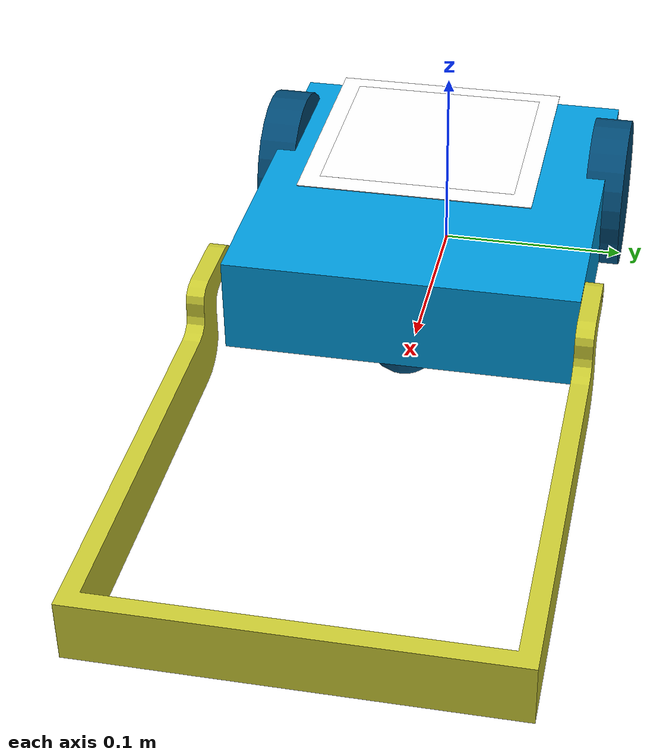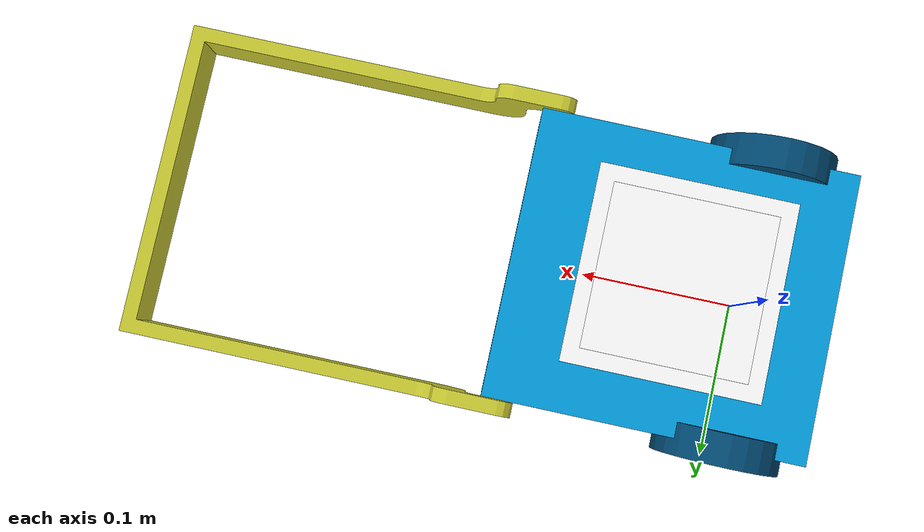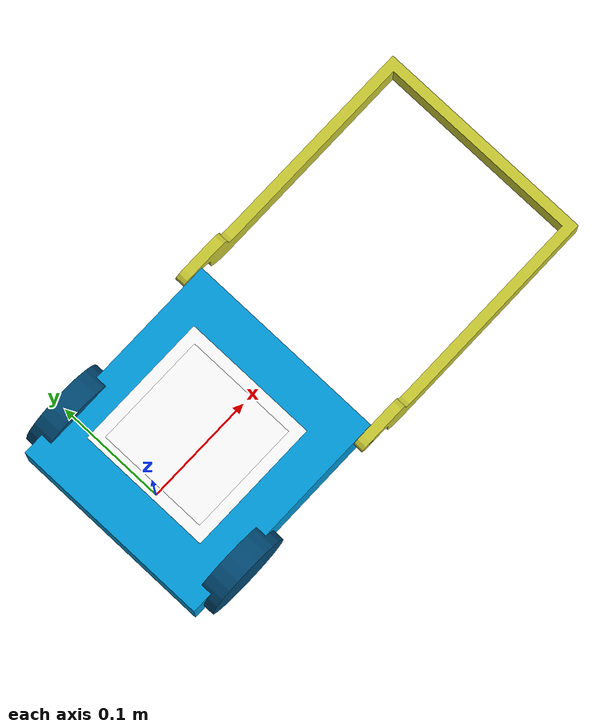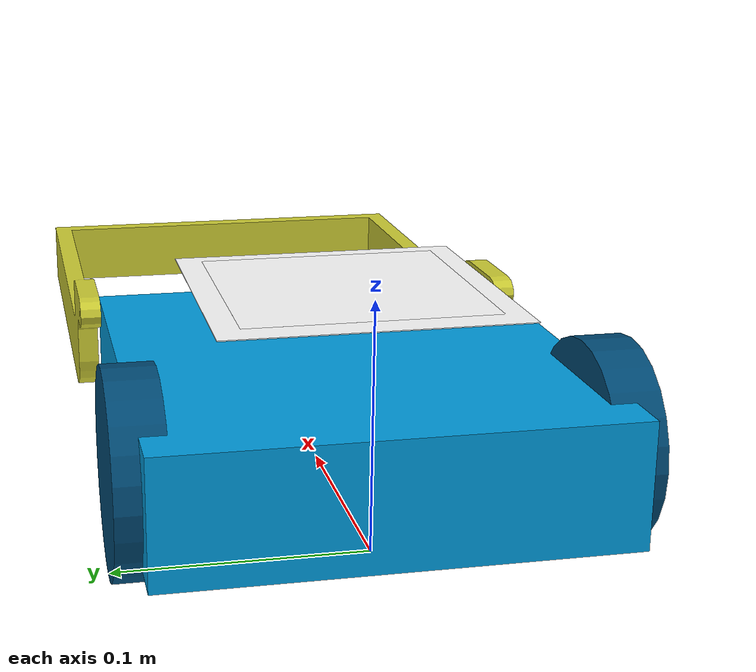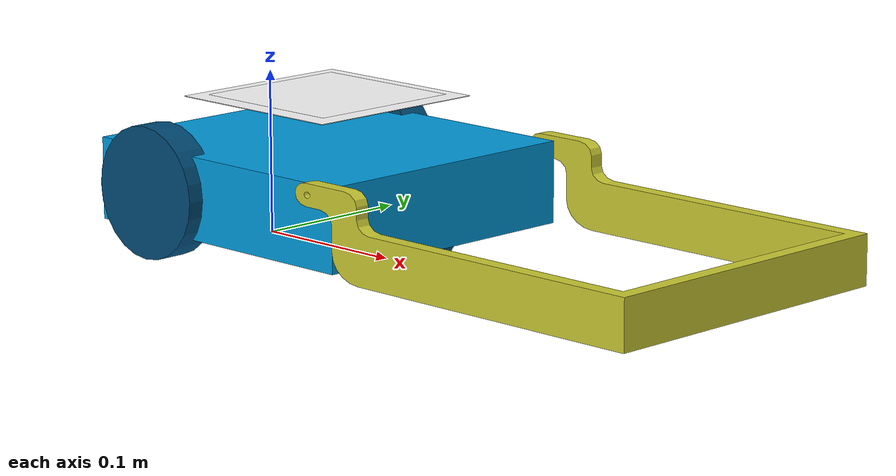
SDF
<?xml version="1.0" ?>
<sdf version="1.9">
  <model name="robot_v1" canonical_link='chassis'>
    <pose>0 0 0 0 0 0</pose>
    <link name='chassis'>
      <pose relative_to='__model__'>0.05 0 0.04 0 0 0</pose>
      <inertial>
        <mass>1</mass>
        <inertia>
          <ixx>0.001191615</ixx>
          <ixy>0</ixy>
          <ixz>0</ixz>
          <iyy>0.004051490</iyy>
          <iyz>0</iyz>
          <izz>0.004766458</izz>
        </inertia>
      </inertial>
      <visual name='visual'>
        <geometry>
          <box>
            <size>0.2 0.181 0.05</size>
          </box>
        </geometry>
        <material>
          <ambient>0.0 0.612 0.867 1</ambient>
          <diffuse>0.0 0.612 0.867 1</diffuse>
          <specular>0.0 0.612 0.867 1</specular>
        </material>
      </visual>
      <collision name='collision'>
        <geometry>
          <box>
            <size>0.2 0.181 0.05</size>
          </box>
        </geometry>
      </collision>

      <sensor name="camera_sensor" type="camera">
        <pose>0.1 0 0.06 0 0 0</pose>
        <camera>
          <image>
            <width>1920</width>
            <height>1080</height>
            <format>R8G8B8</format>
          </image>
          <clip>
            <near>0.1</near>
            <far>100</far>
          </clip>
          <horizontal_fov>1.047</horizontal_fov>
        </camera>
        <always_on>1</always_on>
        <update_rate>5</update_rate>
        <visualize>true</visualize>
        <topic>camera</topic>
      </sensor>

      <sensor name="lidar_3d" type="gpu_lidar">
        <pose>0.1 0 0.08 0 0.0 0</pose>
        <lidar>
          <scan>
            <horizontal>
              <samples>180</samples>
              <resolution>1</resolution>
              <min_angle>-1.5708</min_angle>
              <max_angle>1.5708</max_angle>
            </horizontal>
            <vertical>
              <samples>180</samples>
              <resolution>1</resolution>
              <min_angle>-0.5236</min_angle>
              <max_angle>0.5236</max_angle>
            </vertical>
          </scan>
          <range>
            <min>0.02</min>
            <max>20.0</max>
            <resolution>0.01</resolution>
          </range>
        </lidar>
        <always_on>1</always_on>
        <update_rate>10</update_rate>
        <visualize>true</visualize>
        <topic>lidar_3d</topic>
      </sensor>

      <visual name="marker_border">
        <pose relative_to='chassis'>0.0 0 0.051 0 0 0</pose>
        <geometry>
          <box>
            <size>0.12 0.12 0.0004</size>
          </box>
        </geometry>
        <material>
          <diffuse>1 1 1 1</diffuse>
        </material>
      </visual>

      <visual name='aruco_marker'>
        <pose relative_to='chassis'>0.0 0 0.052 0 0 0</pose>
        <geometry>
          <plane>
            <normal>0 0 1</normal>
            <size>0.1 0.1 0.001</size>
          </plane>
        </geometry>
        <material>
          <diffuse>1 1 1 1</diffuse>
          <pbr>
            <metal>
              <albedo_map>file://models/robot_v1/aruco_0.png</albedo_map>
              <metalness>0.0</metalness>
              <roughness>0.8</roughness>
            </metal>
          </pbr>
        </material>
      </visual>
    </link>

    <link name='left_wheel'>
      <pose relative_to="chassis">-0.05 0.0905 0 -1.5707 0 0</pose>
      <inertial>
        <mass>0.2</mass>
        <inertia>
          <ixx>0.000800</ixx>
          <ixy>0</ixy>
          <ixz>0</ixz>
          <iyy>0.000433</iyy>
          <iyz>0</iyz>
          <izz>0.000433</izz>
        </inertia>
      </inertial>
      <visual name='visual'>
        <geometry>
          <cylinder>
            <radius>0.04</radius>
            <length>0.02</length>
          </cylinder>
        </geometry>
        <material>
          <ambient>0.0 0.29 0.46 1</ambient>
          <diffuse>0.0 0.29 0.46 1</diffuse>
          <specular>0.0 0.0 0.0 1</specular>
        </material>
      </visual>
      <collision name='collision'>
        <geometry>
          <cylinder>
            <radius>0.04</radius>
            <length>0.02</length>
          </cylinder>
        </geometry>
      </collision>
    </link>

    <link name='right_wheel'>
      <pose relative_to="chassis">-0.05 -0.0905 0 -1.5707 0 0</pose>
      <inertial>
        <mass>0.2</mass>
        <inertia>
          <ixx>0.000800</ixx>
          <ixy>0</ixy>
          <ixz>0</ixz>
          <iyy>0.000433</iyy>
          <iyz>0</iyz>
          <izz>0.000433</izz>
        </inertia>
      </inertial>
      <visual name='visual'>
        <geometry>
          <cylinder>
            <radius>0.04</radius>
            <length>0.02</length>
          </cylinder>
        </geometry>
        <material>
          <ambient>0.0 0.29 0.46 1</ambient>
          <diffuse>0.0 0.29 0.46 1</diffuse>
          <specular>0.0 0.0 0.0 1</specular>
        </material>
      </visual>
      <collision name='collision'>
        <geometry>
          <cylinder>
            <radius>0.04</radius>
            <length>0.02</length>
          </cylinder>
        </geometry>
      </collision>
    </link>

    <frame name="caster_frame" attached_to='chassis'>
      <pose>0.08 0 -0.02 0 0 0</pose>
    </frame>
    <link name='caster'>
      <pose relative_to='caster_frame'/>
      <inertial>
        <mass>0.1</mass>
        <inertia>
          <ixx>0.00016</ixx>
          <ixy>0</ixy>
          <ixz>0</ixz>
          <iyy>0.00016</iyy>
          <iyz>0</iyz>
          <izz>0.00016</izz>
        </inertia>
      </inertial>
      <visual name='visual'>
        <geometry>
          <sphere>
            <radius>0.02</radius>
          </sphere>
        </geometry>
        <material>
          <ambient>0.0 0.29 0.46 1</ambient>
          <diffuse>0.0 0.29 0.46 1</diffuse>
          <specular>0.0 0.0 0.0 1</specular>
        </material>
            </visual>
      <collision name='collision'>
        <geometry>
          <sphere>
            <radius>0.02</radius>
          </sphere>
        </geometry>
      </collision>
    </link>

    <link name='arm_link'>
      <pose relative_to='arm_joint'>0 0 0 0 0 0</pose>
      <inertial>
        <mass>0.15</mass>
        <inertia>
          <ixx>0.001</ixx>
          <ixy>0</ixy>
          <ixz>0</ixz>
          <iyy>0.0005</iyy>
          <iyz>0</iyz>
          <izz>0.0015</izz>
        </inertia>
      </inertial>
      <visual name='arm_visual'>
        <pose>0 0 0 0 0 0</pose>
        <geometry>
          <mesh>
            <scale>1 0.75 1</scale>
            <uri>file://models/robot_v1/meshes/link_1.STL</uri>
          </mesh>
        </geometry>
        <material>
          <ambient>0.8 0.8 0.2 1</ambient>
          <diffuse>0.8 0.8 0.2 1</diffuse>
        </material>
      </visual>
      <collision name='arm_collision'>
        <pose>0 0 0 0 0 0</pose>
        <geometry>
          <mesh>
            <scale>1 0.75 1</scale>
            <uri>file://models/robot_v1/meshes/link_1.STL</uri>
          </mesh>
        </geometry>
      </collision>
    </link>

    <joint name='arm_joint' type='revolute'>
      <pose relative_to='chassis'>0.09 0.1 0.021 1.5708 0 0</pose>
      <parent>chassis</parent>
      <child>arm_link</child>
      <axis>
        <xyz expressed_in='__model__'>0 1 0</xyz>
        <limit>
          <lower>-3.14</lower> <!-- zurückgeklappt -->
          <upper>0</upper>       <!-- nach vorne ausgeklappt -->
          <effort>100</effort>
          <velocity>5.0</velocity>
        </limit>
        <dynamics>
          <damping>0.1</damping>
          <friction>0.01</friction>
        </dynamics>
      </axis>
    </joint>

    <joint name='left_wheel_joint' type='revolute'>
      <pose relative_to='left_wheel'/>
      <parent>chassis</parent>
      <child>left_wheel</child>
      <axis>
        <xyz expressed_in='__model__'>0 1 0</xyz>
        <limit>
          <lower>-1.79769e+308</lower>
          <upper>1.79769e+308</upper>
        </limit>
      </axis>
    </joint>

    <joint name='right_wheel_joint' type='revolute'>
      <pose relative_to='right_wheel'/>
      <parent>chassis</parent>
      <child>right_wheel</child>
      <axis>
        <xyz expressed_in='__model__'>0 1 0</xyz>
        <limit>
          <lower>-1.79769e+308</lower>
          <upper>1.79769e+308</upper>
        </limit>
      </axis>
    </joint>

    <joint name='caster_wheel' type='ball'>
      <parent>chassis</parent>
      <child>caster</child>
    </joint>

    <plugin
      filename="libignition-gazebo-diff-drive-system.so"
      name="ignition::gazebo::systems::DiffDrive">
      <left_joint>left_wheel_joint</left_joint>
      <right_joint>right_wheel_joint</right_joint>
      <wheel_separation>0.181</wheel_separation>
      <wheel_radius>0.04</wheel_radius>
      <odom_publish_frequency>1</odom_publish_frequency>
      <publish_odom>true</publish_odom>
      <odom_topic>/odometry</odom_topic>
      <topic>cmd_vel</topic>
    </plugin>

    <plugin
      filename="ignition-gazebo-sensors-system"
      name="ignition::gazebo::systems::Sensors">
      <render_engine>ogre</render_engine>
    </plugin>

    <plugin
      filename="libignition-gazebo-joint-position-controller-system.so"
      name="ignition::gazebo::systems::JointPositionController">
      <joint_name>arm_joint</joint_name>
      <topic>/arm_joint/position_cmd</topic>
      <p_gain>100</p_gain>
      <i_gain>0.1</i_gain>
      <d_gain>0.01</d_gain>
      <i_max>1</i_max>
      <i_min>-1</i_min>
      <cmd_max>1000</cmd_max>
      <cmd_min>-1000</cmd_min>
    </plugin>

  </model>
</sdf>
